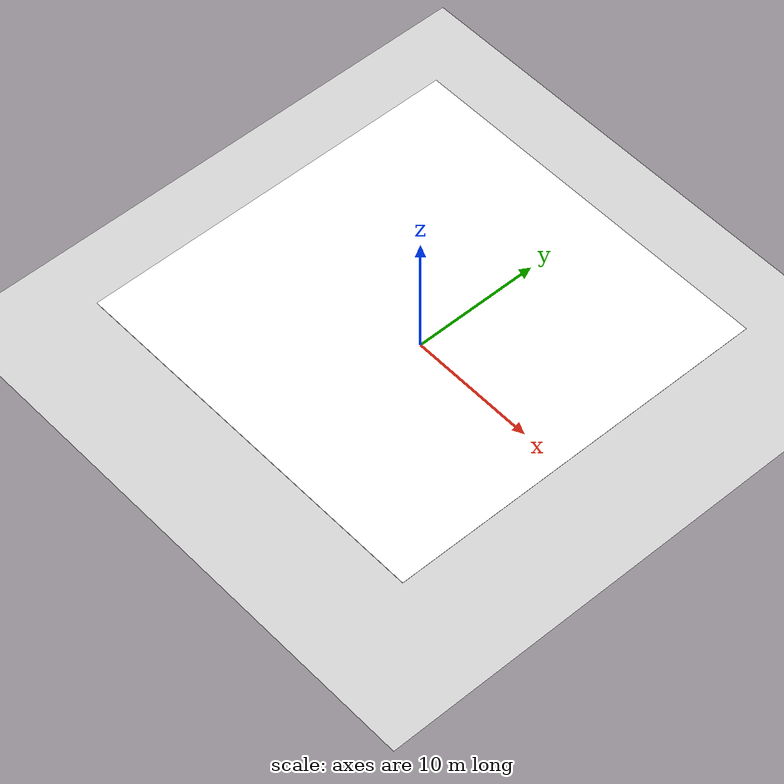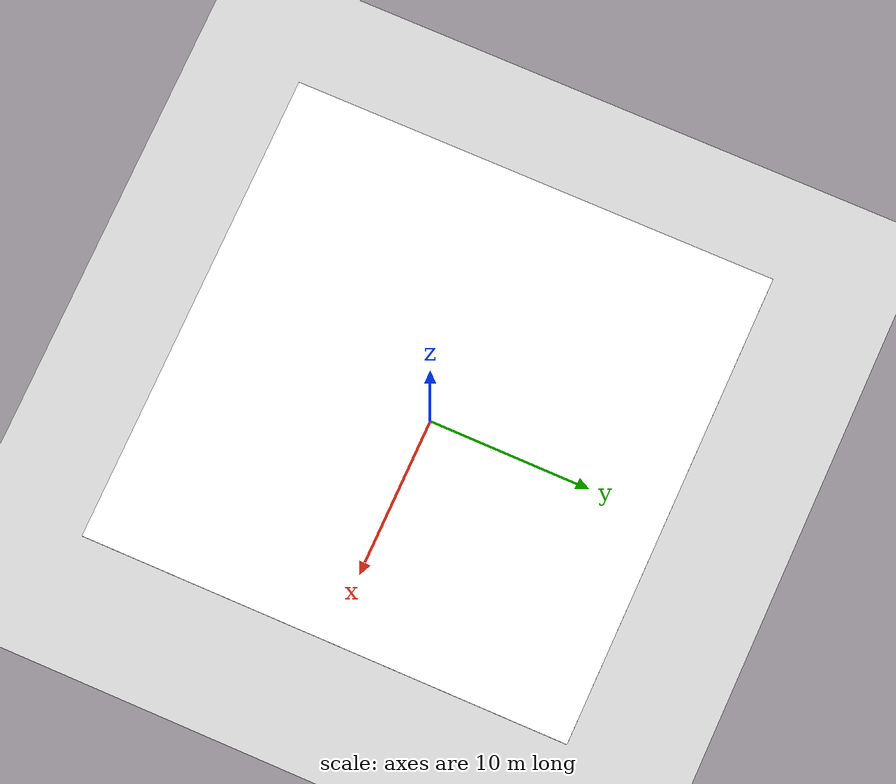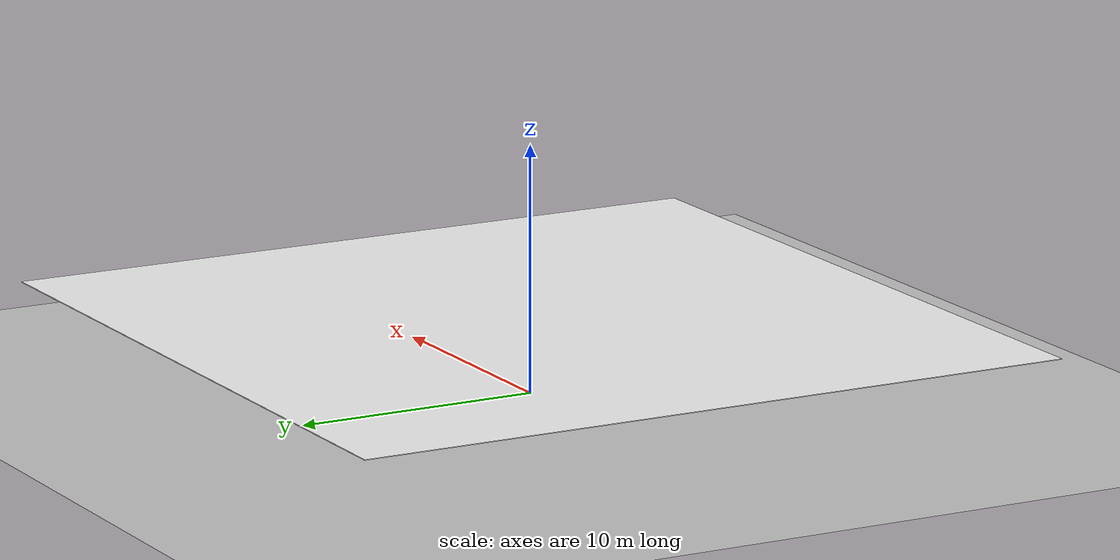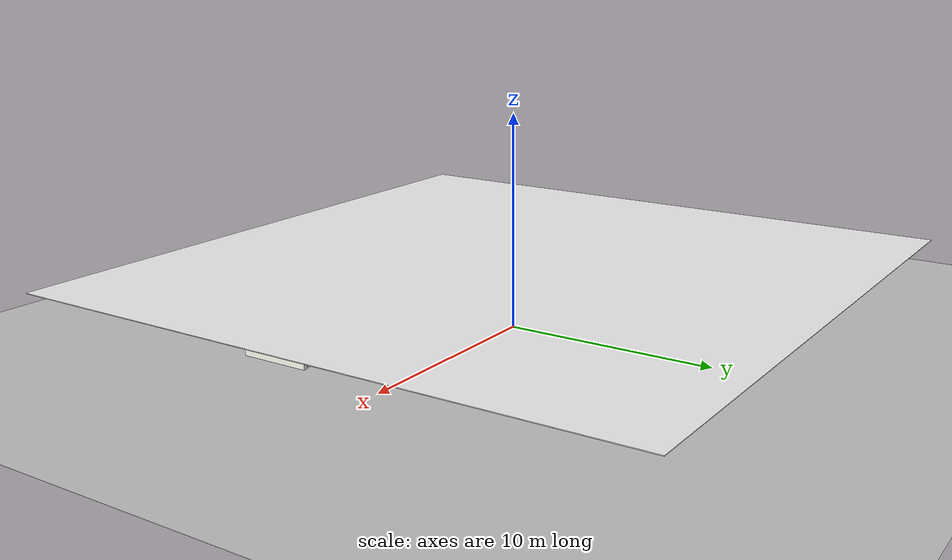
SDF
<?xml version="1.0" encoding="UTF-8"?>
<sdf version="1.9">
  <world name="indoor_hallway">
    <physics type="ode">
      <max_step_size>0.004</max_step_size>
      <real_time_factor>1.0</real_time_factor>
      <real_time_update_rate>250</real_time_update_rate>
    </physics>
    <gravity>0 0 -9.8</gravity>
    <magnetic_field>6e-06 2.3e-05 -4.2e-05</magnetic_field>
    <atmosphere type="adiabatic"/>
    <scene>
      <grid>false</grid>
      <ambient>0.8 0.8 0.8 1</ambient>
      <background>0.9 0.9 0.9 1</background>
      <shadows>true</shadows>
    </scene>

    <!-- Ground plane (indoor floor) -->
    <model name="ground_plane">
      <static>true</static>
      <link name="link">
        <collision name="collision">
          <geometry>
            <plane>
              <normal>0 0 1</normal>
              <size>1 1</size>
            </plane>
          </geometry>
          <surface>
            <friction>
              <ode/>
            </friction>
            <bounce/>
            <contact/>
          </surface>
        </collision>
        <visual name="visual">
          <geometry>
            <plane>
              <normal>0 0 1</normal>
              <size>100 100</size>
            </plane>
          </geometry>
          <material>
            <ambient>0.7 0.7 0.7 1</ambient>
            <diffuse>0.8 0.8 0.8 1</diffuse>
            <specular>0.1 0.1 0.1 1</specular>
          </material>
        </visual>
        <pose>0 0 0 0 -0 0</pose>
        <inertial>
          <pose>0 0 0 0 -0 0</pose>
          <mass>1</mass>
          <inertia>
            <ixx>1</ixx>
            <ixy>0</ixy>
            <ixz>0</ixz>
            <iyy>1</iyy>
            <iyz>0</iyz>
            <izz>1</izz>
          </inertia>
        </inertial>
        <enable_wind>false</enable_wind>
      </link>
      <pose>0 0 0 0 -0 0</pose>
      <self_collide>false</self_collide>
    </model>

    <!-- Indoor lighting -->
    <light name="ceiling_light_1" type="point">
      <pose>5 5 2.5 0 0 0</pose>
      <cast_shadows>true</cast_shadows>
      <intensity>1</intensity>
      <diffuse>1 1 1 1</diffuse>
      <specular>0.5 0.5 0.5 1</specular>
      <attenuation>
        <range>20</range>
        <linear>0.01</linear>
        <constant>0.5</constant>
        <quadratic>0.001</quadratic>
      </attenuation>
    </light>

    <light name="ceiling_light_2" type="point">
      <pose>5 -5 2.5 0 0 0</pose>
      <cast_shadows>true</cast_shadows>
      <intensity>1</intensity>
      <diffuse>1 1 1 1</diffuse>
      <specular>0.5 0.5 0.5 1</specular>
      <attenuation>
        <range>20</range>
        <linear>0.01</linear>
        <constant>0.5</constant>
        <quadratic>0.001</quadratic>
      </attenuation>
    </light>

    <light name="ceiling_light_3" type="point">
      <pose>-5 5 2.5 0 0 0</pose>
      <cast_shadows>true</cast_shadows>
      <intensity>1</intensity>
      <diffuse>1 1 1 1</diffuse>
      <specular>0.5 0.5 0.5 1</specular>
      <attenuation>
        <range>20</range>
        <linear>0.01</linear>
        <constant>0.5</constant>
        <quadratic>0.001</quadratic>
      </attenuation>
    </light>

    <!-- L-shaped hallway walls -->
    <!-- Hallway dimensions: 3m wide, 3m tall, 20m total length in L shape -->

    <!-- Outer walls of vertical section (North-South hallway) -->
    <model name="wall_outer_vertical_left">
      <static>true</static>
      <pose>-1.5 0 1.5 0 0 0</pose>
      <link name="link">
        <collision name="collision">
          <geometry>
            <box>
              <size>0.2 12 3</size>
            </box>
          </geometry>
        </collision>
        <visual name="visual">
          <geometry>
            <box>
              <size>0.2 12 3</size>
            </box>
          </geometry>
          <material>
            <ambient>0.9 0.9 0.85 1</ambient>
            <diffuse>0.95 0.95 0.9 1</diffuse>
            <specular>0.1 0.1 0.1 1</specular>
          </material>
        </visual>
      </link>
    </model>

    <model name="wall_outer_vertical_right">
      <static>true</static>
      <pose>1.5 0 1.5 0 0 0</pose>
      <link name="link">
        <collision name="collision">
          <geometry>
            <box>
              <size>0.2 12 3</size>
            </box>
          </geometry>
        </collision>
        <visual name="visual">
          <geometry>
            <box>
              <size>0.2 12 3</size>
            </box>
          </geometry>
          <material>
            <ambient>0.9 0.9 0.85 1</ambient>
            <diffuse>0.95 0.95 0.9 1</diffuse>
            <specular>0.1 0.1 0.1 1</specular>
          </material>
        </visual>
      </link>
    </model>

    <!-- End wall for vertical section (North end) -->
    <model name="wall_vertical_end">
      <static>true</static>
      <pose>0 6 1.5 0 0 0</pose>
      <link name="link">
        <collision name="collision">
          <geometry>
            <box>
              <size>3.4 0.2 3</size>
            </box>
          </geometry>
        </collision>
        <visual name="visual">
          <geometry>
            <box>
              <size>3.4 0.2 3</size>
            </box>
          </geometry>
          <material>
            <ambient>0.9 0.9 0.85 1</ambient>
            <diffuse>0.95 0.95 0.9 1</diffuse>
            <specular>0.1 0.1 0.1 1</specular>
          </material>
        </visual>
      </link>
    </model>

    <!-- Outer walls of horizontal section (East-West hallway) -->
    <model name="wall_outer_horizontal_top">
      <static>true</static>
      <pose>5.5 -4.5 1.5 0 0 0</pose>
      <link name="link">
        <collision name="collision">
          <geometry>
            <box>
              <size>8 0.2 3</size>
            </box>
          </geometry>
        </collision>
        <visual name="visual">
          <geometry>
            <box>
              <size>8 0.2 3</size>
            </box>
          </geometry>
          <material>
            <ambient>0.9 0.9 0.85 1</ambient>
            <diffuse>0.95 0.95 0.9 1</diffuse>
            <specular>0.1 0.1 0.1 1</specular>
          </material>
        </visual>
      </link>
    </model>

    <model name="wall_outer_horizontal_bottom">
      <static>true</static>
      <pose>5.5 -7.5 1.5 0 0 0</pose>
      <link name="link">
        <collision name="collision">
          <geometry>
            <box>
              <size>8 0.2 3</size>
            </box>
          </geometry>
        </collision>
        <visual name="visual">
          <geometry>
            <box>
              <size>8 0.2 3</size>
            </box>
          </geometry>
          <material>
            <ambient>0.9 0.9 0.85 1</ambient>
            <diffuse>0.95 0.95 0.9 1</diffuse>
            <specular>0.1 0.1 0.1 1</specular>
          </material>
        </visual>
      </link>
    </model>

    <!-- End wall for horizontal section (East end) -->
    <model name="wall_horizontal_end">
      <static>true</static>
      <pose>9.5 -6 1.5 0 0 0</pose>
      <link name="link">
        <collision name="collision">
          <geometry>
            <box>
              <size>0.2 3.4 3</size>
            </box>
          </geometry>
        </collision>
        <visual name="visual">
          <geometry>
            <box>
              <size>0.2 3.4 3</size>
            </box>
          </geometry>
          <material>
            <ambient>0.9 0.9 0.85 1</ambient>
            <diffuse>0.95 0.95 0.9 1</diffuse>
            <specular>0.1 0.1 0.1 1</specular>
          </material>
        </visual>
      </link>
    </model>

    <!-- Inner corner walls connecting the two hallway sections -->
    <model name="wall_inner_corner_vertical">
      <static>true</static>
      <pose>1.5 -3 1.5 0 0 0</pose>
      <link name="link">
        <collision name="collision">
          <geometry>
            <box>
              <size>0.2 6 3</size>
            </box>
          </geometry>
        </collision>
        <visual name="visual">
          <geometry>
            <box>
              <size>0.2 6 3</size>
            </box>
          </geometry>
          <material>
            <ambient>0.9 0.9 0.85 1</ambient>
            <diffuse>0.95 0.95 0.9 1</diffuse>
            <specular>0.1 0.1 0.1 1</specular>
          </material>
        </visual>
      </link>
    </model>

    <model name="wall_inner_corner_horizontal">
      <static>true</static>
      <pose>3.5 -4.5 1.5 0 0 0</pose>
      <link name="link">
        <collision name="collision">
          <geometry>
            <box>
              <size>4 0.2 3</size>
            </box>
          </geometry>
        </collision>
        <visual name="visual">
          <geometry>
            <box>
              <size>4 0.2 3</size>
            </box>
          </geometry>
          <material>
            <ambient>0.9 0.9 0.85 1</ambient>
            <diffuse>0.95 0.95 0.9 1</diffuse>
            <specular>0.1 0.1 0.1 1</specular>
          </material>
        </visual>
      </link>
    </model>

    <!-- Ceiling (optional for enclosed feeling) -->
    <model name="ceiling">
      <static>true</static>
      <pose>0 0 3 0 0 0</pose>
      <link name="link">
        <visual name="visual">
          <geometry>
            <plane>
              <normal>0 0 -1</normal>
              <size>30 30</size>
            </plane>
          </geometry>
          <material>
            <ambient>0.95 0.95 0.95 1</ambient>
            <diffuse>1 1 1 1</diffuse>
            <specular>0.2 0.2 0.2 1</specular>
          </material>
        </visual>
      </link>
    </model>

    <!-- Feature markers for SLAM (distinctive objects in hallway) -->
    <model name="feature_box_1">
      <static>true</static>
      <pose>0 3 0.25 0 0 0</pose>
      <link name="link">
        <collision name="collision">
          <geometry>
            <box>
              <size>0.5 0.5 0.5</size>
            </box>
          </geometry>
        </collision>
        <visual name="visual">
          <geometry>
            <box>
              <size>0.5 0.5 0.5</size>
            </box>
          </geometry>
          <material>
            <ambient>0.8 0.2 0.2 1</ambient>
            <diffuse>0.9 0.3 0.3 1</diffuse>
            <specular>0.3 0.3 0.3 1</specular>
          </material>
        </visual>
      </link>
    </model>

    <model name="feature_box_2">
      <static>true</static>
      <pose>0 -2 0.25 0 0 0</pose>
      <link name="link">
        <collision name="collision">
          <geometry>
            <box>
              <size>0.5 0.5 0.5</size>
            </box>
          </geometry>
        </collision>
        <visual name="visual">
          <geometry>
            <box>
              <size>0.5 0.5 0.5</size>
            </box>
          </geometry>
          <material>
            <ambient>0.2 0.2 0.8 1</ambient>
            <diffuse>0.3 0.3 0.9 1</diffuse>
            <specular>0.3 0.3 0.3 1</specular>
          </material>
        </visual>
      </link>
    </model>

    <model name="feature_cylinder_1">
      <static>true</static>
      <pose>6 -6 0.4 0 0 0</pose>
      <link name="link">
        <collision name="collision">
          <geometry>
            <cylinder>
              <radius>0.3</radius>
              <length>0.8</length>
            </cylinder>
          </geometry>
        </collision>
        <visual name="visual">
          <geometry>
            <cylinder>
              <radius>0.3</radius>
              <length>0.8</length>
            </cylinder>
          </geometry>
          <material>
            <ambient>0.2 0.8 0.2 1</ambient>
            <diffuse>0.3 0.9 0.3 1</diffuse>
            <specular>0.3 0.3 0.3 1</specular>
          </material>
        </visual>
      </link>
    </model>

    <spherical_coordinates>
      <surface_model>EARTH_WGS84</surface_model>
      <world_frame_orientation>ENU</world_frame_orientation>
      <latitude_deg>37.7749</latitude_deg>
      <longitude_deg>-122.4194</longitude_deg>
      <elevation>0</elevation>
      <heading_deg>0</heading_deg>
    </spherical_coordinates>
  </world>
</sdf>
